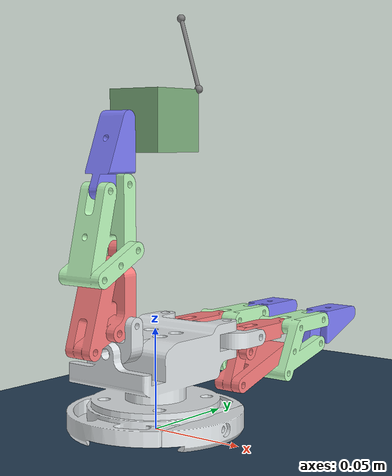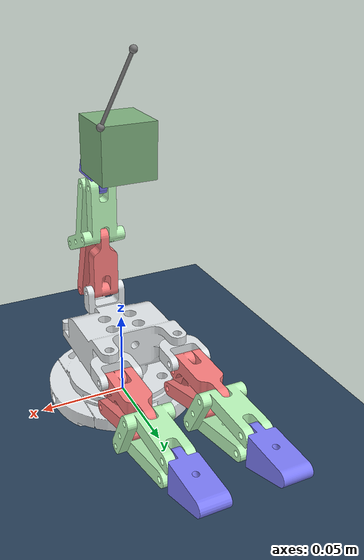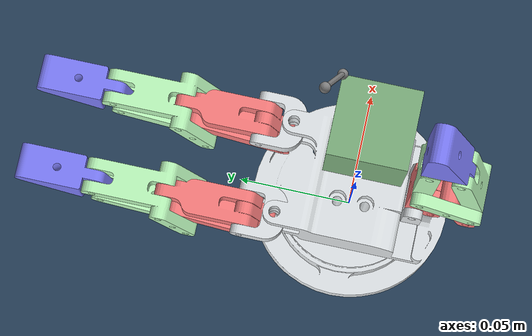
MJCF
<mujoco model="hx01_p11_urdf_v1_5 scene">
  <include file="mjmodel.xml"/>

  <!-- Add some fluid viscosity to prevent the hanging box from jiggling forever -->
  <option viscosity="0.5"/>

  <statistic center="0 0 0.05" extent="0.3"/>

  <visual>
    <headlight diffuse="0.3 0.3 0.3" ambient="0.3 0.3 0.3" specular="0 0 0"/>
    <rgba haze="0.15 0.25 0.35 1"/>
    <global azimuth="60" elevation="-20"/>
  </visual>

  <asset>
    <texture type="skybox" builtin="gradient" rgb1="0.3 0.5 0.7" rgb2="0 0 0" width="512" height="3072"/>
    <texture type="2d" name="groundplane" builtin="checker" mark="edge" rgb1="0.2 0.3 0.4" rgb2="0.1 0.2 0.3"
      markrgb="0.8 0.8 0.8" width="300" height="300"/>
    <material name="groundplane" texture="groundplane" texuniform="true" texrepeat="5 5" reflectance="0.2"/>
  </asset>

  <worldbody>
    <light pos="0 0 1"/>
    <light pos="0 -0.2 1" dir="0 0.2 -0.8" directional="true"/>
    <geom name="floor" size="0 0 0.05" type="plane" material="groundplane"/>

    <site size="0.002" pos="0 0.02 0.2" name="anchor"/>
    <body name="object" pos="0 0 0.15">
      <freejoint/>
      <geom type="box" size="0.015 0.015 0.015" rgba=".5 .7 .5 1" friction=".5" priority="1"/>
      <site size="0.002" pos="0.015 0.015 0.015" name="hook"/>
    </body>
  </worldbody>

  <tendon>
    <spatial limited="true" range="0 0.08" width="0.001">
      <site site="hook"/>
      <site site="anchor"/>
    </spatial>
  </tendon>

</mujoco>

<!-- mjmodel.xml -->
<mujoco model="hx01_p11_urdf_v1_5">
  <compiler angle="radian" meshdir="..\meshes/"/>
   <option cone="elliptic" impratio="10"/>

  <asset>
    <mesh name="hx01_hand_base_link" file="hx01_hand_base_link.STL"/>
    <mesh name="link1_F1_Ujoint" file="link1_F1_Ujoint.STL"/>
    <mesh name="link2_F1_Proximal" file="link2_F1_Proximal.STL"/>
    <mesh name="link3_F1_Intermediate" file="link3_F1_Intermediate.STL"/>
    <mesh name="link4_F1_Distal" file="link4_F1_Distal.STL"/>
    <mesh name="link5_F2_Ujoint" file="link5_F2_Ujoint.STL"/>
    <mesh name="link6_F2_Proximal" file="link6_F2_Proximal.STL"/>
    <mesh name="link7_F2_Intermediate" file="link7_F2_Intermediate.STL"/>
    <mesh name="link8_F2_Distal" file="link8_F2_Distal.STL"/>
    <mesh name="link9_F3_Ujoint" file="link9_F3_Ujoint.STL"/>
    <mesh name="link10_F3_Proximal" file="link10_F3_Proximal.STL"/>
    <mesh name="link11_F3_Intermediate" file="link11_F3_Intermediate.STL"/>
    <mesh name="link12_F3_Distal" file="link12_F3_Distal.STL"/>
  </asset>

  <worldbody>
    <body name="hand_base" pos="0 0 0.0475">
      <geom type="mesh" contype="0" conaffinity="0" group="2" density="0" rgba="0.89804 0.91765 0.92941 1" mesh="hx01_hand_base_link"/>
      <geom type="mesh" rgba="0.89804 0.91765 0.92941 1" mesh="hx01_hand_base_link"/>
      <!-- finger 1 -->
      <body name="link1_F1_Ujoint" pos="0 -0.026 -0.005">
        <inertial pos="3.4029e-05 0 0.0035961" quat="0.502974 0.497009 0.497009 0.502974" mass="0.0061837" diaginertia="5.4172e-07 3.90194e-07 2.24316e-07"/>
        <joint name="joint1_F1_MCPAbAd" pos="0 0 0" axis="0 1 0" range="-1.571 1.571" actuatorfrcrange="-100 100" damping = "0.2"/>
        <geom type="mesh" contype="0" conaffinity="0" group="1" density="0" rgba="0.89804 0.91765 0.92941 1" mesh="link1_F1_Ujoint"/>
        <geom type="mesh" rgba="0.89804 0.91765 0.92941 1" mesh="link1_F1_Ujoint"/>
        <body name="link2_F1_Proximal" pos="0 0 0.013">
          <inertial pos="2.6493e-06 -0.0098301 0.010587" quat="0.701164 -0.0925422 0.0921347 0.70094" mass="0.0095795" diaginertia="1.41292e-06 1.363e-06 3.04427e-07"/>
          <joint name="joint2_F1_MCPFlex" pos="0 0 0" axis="-1 0 0" range="0 2.094" actuatorfrcrange="-100 100" damping = "0.2"/>
          <geom type="mesh" contype="0" conaffinity="0" group="1" density="0" rgba="1 0.50196 0.50196 1" mesh="link2_F1_Proximal"/>
          <geom type="mesh" rgba="1 0.50196 0.50196 1" mesh="link2_F1_Proximal"/>
          <body name="link3_F1_Intermediate" pos="0 0 0.035">
            <inertial pos="4.9352e-06 -0.010536 0.006551" quat="0.705034 -0.0895943 0.0893767 0.697791" mass="0.010285" diaginertia="1.2826e-06 1.2728e-06 3.49812e-07"/>
            <joint name="joint3_F1_PIP" pos="0 0 0" axis="-1 0 0" range="0 1.571" actuatorfrcrange="-100 100" damping = "0.2"/>
            <geom type="mesh" contype="0" conaffinity="0" group="1" density="0" rgba="0.75294 1 0.75294 1" mesh="link3_F1_Intermediate"/>
            <geom type="mesh" rgba="0.75294 1 0.75294 1" mesh="link3_F1_Intermediate"/>
            <body name="link4_F1_Distal" pos="0 0 0.03">
              <inertial pos="2.6322e-09 -0.003231 0.014697" quat="0.701637 -0.087779 0.087779 0.701637" mass="0.0060356" diaginertia="6.80049e-07 6.7963e-07 2.01081e-07"/>
              <joint name="joint4_F1_DIP" pos="0 0 0" axis="-1 0 0" range="0 1.571" actuatorfrcrange="-100 100" damping = "0.2"/>
              <geom type="mesh" contype="0" conaffinity="0" group="1" density="0" rgba="0.50196 0.50196 1 1" mesh="link4_F1_Distal"/>
              <geom type="mesh" rgba="0.50196 0.50196 1 1" mesh="link4_F1_Distal"/>
            </body>
          </body>
        </body>
      </body>
      <!-- finger 2 -->
      <body name="link5_F2_Ujoint" pos="0.02 0.031 -0.005">
        <inertial pos="-3.4029e-05 0.0035961 0" quat="0.00421802 0.707094 -0.00421802 0.707094" mass="0.0061837" diaginertia="5.4172e-07 3.90194e-07 2.24316e-07"/>
        <joint name="joint5_F2_MCPAbAd" pos="0 0 0" axis="0 0 1" range="-1.571 0.3" actuatorfrcrange="-100 100" damping = "0.2"/>
        <geom type="mesh" contype="0" conaffinity="0" group="1" density="0" rgba="0.89804 0.91765 0.92941 1" mesh="link5_F2_Ujoint"/>
        <geom type="mesh" rgba="0.89804 0.91765 0.92941 1" mesh="link5_F2_Ujoint"/>
        <body name="link6_F2_Proximal" pos="0 0.013 0">
          <inertial pos="-2.6493e-06 0.010587 -0.0098301" quat="0.43049 0.560788 -0.561235 0.43036" mass="0.0095795" diaginertia="1.41292e-06 1.363e-06 3.04427e-07"/>
          <joint name="joint6_F2_MCPFlex" pos="0 0 0" axis="1 0 0" range="0 2.094" actuatorfrcrange="-100 100" damping = "0.2"/>
          <geom type="mesh" contype="0" conaffinity="0" group="1" density="0" rgba="1 0.50196 0.50196 1" mesh="link6_F2_Proximal"/>
          <geom type="mesh" rgba="1 0.50196 0.50196 1" mesh="link6_F2_Proximal"/>
          <body name="link7_F2_Intermediate" pos="0 0.035 0">
            <inertial pos="-4.9352e-06 0.006551 -0.010536" quat="0.430214 0.556611 -0.561887 0.435181" mass="0.010285" diaginertia="1.2826e-06 1.2728e-06 3.49812e-07"/>
            <joint name="joint7_F2_PIP" pos="0 0 0" axis="1 0 0" range="0 1.571" actuatorfrcrange="-100 100" damping = "0.2"/>
            <geom type="mesh" contype="0" conaffinity="0" group="1" density="0" rgba="0.75294 1 0.75294 1" mesh="link7_F2_Intermediate"/>
            <geom type="mesh" rgba="0.75294 1 0.75294 1" mesh="link7_F2_Intermediate"/>
            <body name="link8_F2_Distal" pos="0 0.03 0">
              <inertial pos="-2.6322e-09 0.014697 -0.003231" quat="0.434063 0.558202 -0.558202 0.434063" mass="0.0060356" diaginertia="6.80049e-07 6.7963e-07 2.01081e-07"/>
              <joint name="joint8_F2_DIP" pos="0 0 0" axis="1 0 0" range="0 1.571" actuatorfrcrange="-100 100" damping = "0.2"/>
              <geom type="mesh" contype="0" conaffinity="0" group="1" density="0" rgba="0.50196 0.50196 1 1" mesh="link8_F2_Distal"/>
              <geom type="mesh" rgba="0.50196 0.50196 1 1" mesh="link8_F2_Distal"/>
            </body>
          </body>
        </body>
      </body>
      <!-- finger 3 -->
      <body name="link9_F3_Ujoint" pos="-0.02 0.031 -0.005">
        <inertial pos="-3.4029e-05 0.0035961 0" quat="0.00421802 0.707094 -0.00421802 0.707094" mass="0.0061837" diaginertia="5.4172e-07 3.90194e-07 2.24316e-07"/>
        <joint name="joint9_F3_MCPAbAd" pos="0 0 0" axis="0 0 1" range="-0.3 1.571" actuatorfrcrange="-100 100" damping = "0.2"/>
        <geom type="mesh" contype="0" conaffinity="0" group="1" density="0" rgba="0.89804 0.91765 0.92941 1" mesh="link9_F3_Ujoint"/>
        <geom type="mesh" rgba="0.89804 0.91765 0.92941 1" mesh="link9_F3_Ujoint"/>
        <body name="link10_F3_Proximal" pos="0 0.013 0">
          <inertial pos="-2.6493e-06 0.010587 -0.0098301" quat="0.43049 0.560788 -0.561235 0.43036" mass="0.0095795" diaginertia="1.41292e-06 1.363e-06 3.04427e-07"/>
          <joint name="joint10_F3_MCPFlex" pos="0 0 0" axis="1 0 0" range="0 2.097" actuatorfrcrange="-100 100" damping = "0.2"/>
          <geom type="mesh" contype="0" conaffinity="0" group="1" density="0" rgba="1 0.50196 0.50196 1" mesh="link10_F3_Proximal"/>
          <geom type="mesh" rgba="1 0.50196 0.50196 1" mesh="link10_F3_Proximal"/>
          <body name="link11_F3_Intermediate" pos="0 0.035 0">
            <inertial pos="-4.9352e-06 0.006551 -0.010536" quat="0.430214 0.556611 -0.561887 0.435181" mass="0.010285" diaginertia="1.2826e-06 1.2728e-06 3.49812e-07"/>
            <joint name="joint11_F3_PIP" pos="0 0 0" axis="1 0 0" range="0 1.571" actuatorfrcrange="-100 100" damping = "0.2"/>
            <geom type="mesh" contype="0" conaffinity="0" group="1" density="0" rgba="0.75294 1 0.75294 1" mesh="link11_F3_Intermediate"/>
            <geom type="mesh" rgba="0.75294 1 0.75294 1" mesh="link11_F3_Intermediate"/>
            <body name="link12_F3_Distal" pos="0 0.03 0">
              <inertial pos="-2.6322e-09 0.014697 -0.003231" quat="0.434063 0.558202 -0.558202 0.434063" mass="0.0060356" diaginertia="6.80049e-07 6.7963e-07 2.01081e-07"/>
              <joint name="joint12_F3_DIP" pos="0 0 0" axis="1 0 0" range="0 1.571" actuatorfrcrange="-100 100" damping = "0.2"/>
              <geom type="mesh" contype="0" conaffinity="0" group="1" density="0" rgba="0.50196 0.50196 1 1" mesh="link12_F3_Distal"/>
              <geom type="mesh" rgba="0.50196 0.50196 1 1" mesh="link12_F3_Distal"/>
            </body>
          </body>
        </body>
      </body>
   </body>
  </worldbody>

  <actuator>
    <position name="F1_Act1" joint="joint1_F1_MCPAbAd" ctrlrange="-1.571 1.571"/>
    <position name="F1_Act2" joint="joint2_F1_MCPFlex" ctrlrange="0 2.097"/>
    <position name="F1_Act3" joint="joint3_F1_PIP" ctrlrange="0 1.571"/>
    <position name="F1_Act4" joint="joint4_F1_DIP" ctrlrange="0 1.571"/>

    <position name="F2_Act1" joint="joint5_F2_MCPAbAd" ctrlrange="-1.571 1.571"/>
    <position name="F2_Act2" joint="joint6_F2_MCPFlex" ctrlrange="0 2.097"/>
    <position name="F2_Act3" joint="joint7_F2_PIP" ctrlrange="0 1.571"/>
    <position name="F2_Act4" joint="joint8_F2_DIP" ctrlrange="0 1.571"/>

    <position name="F3_Act1" joint="joint9_F3_MCPAbAd" ctrlrange="-1.571 1.571"/>
    <position name="F3_Act2" joint="joint10_F3_MCPFlex" ctrlrange="0 2.097"/>
    <position name="F3_Act3" joint="joint11_F3_PIP" ctrlrange="0 1.571"/>
    <position name="F3_Act4" joint="joint12_F3_DIP" ctrlrange="0 1.571"/>
  </actuator>
</mujoco>
